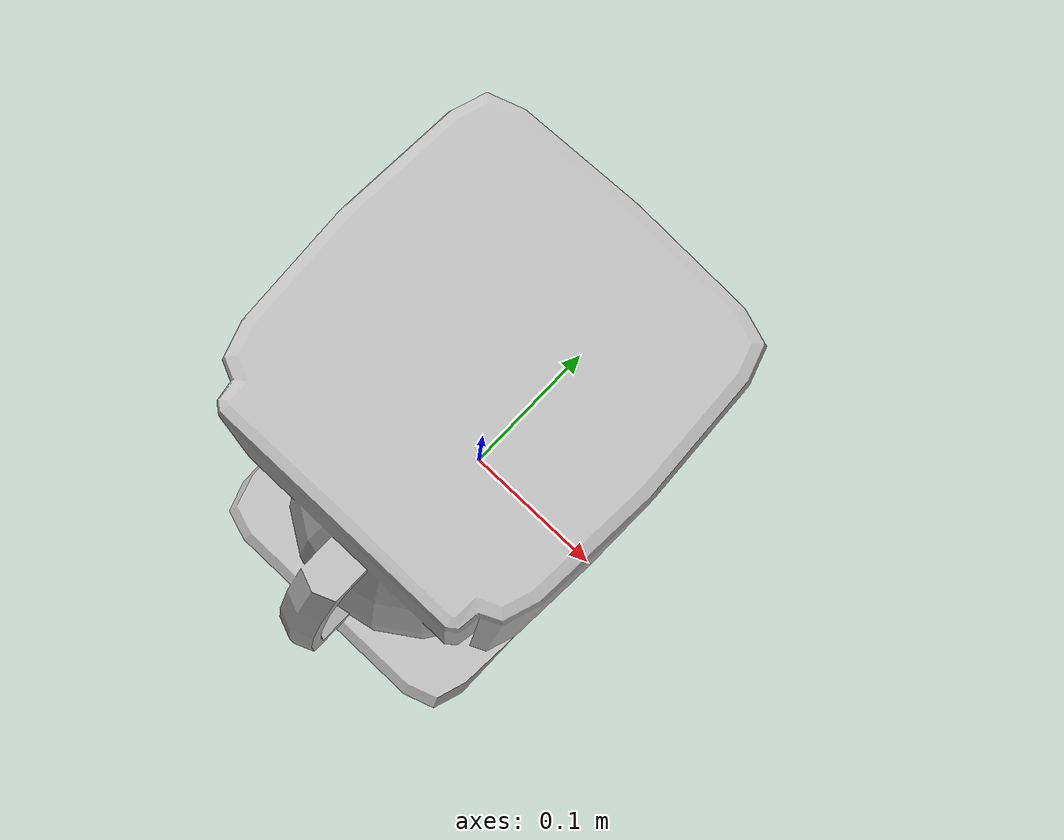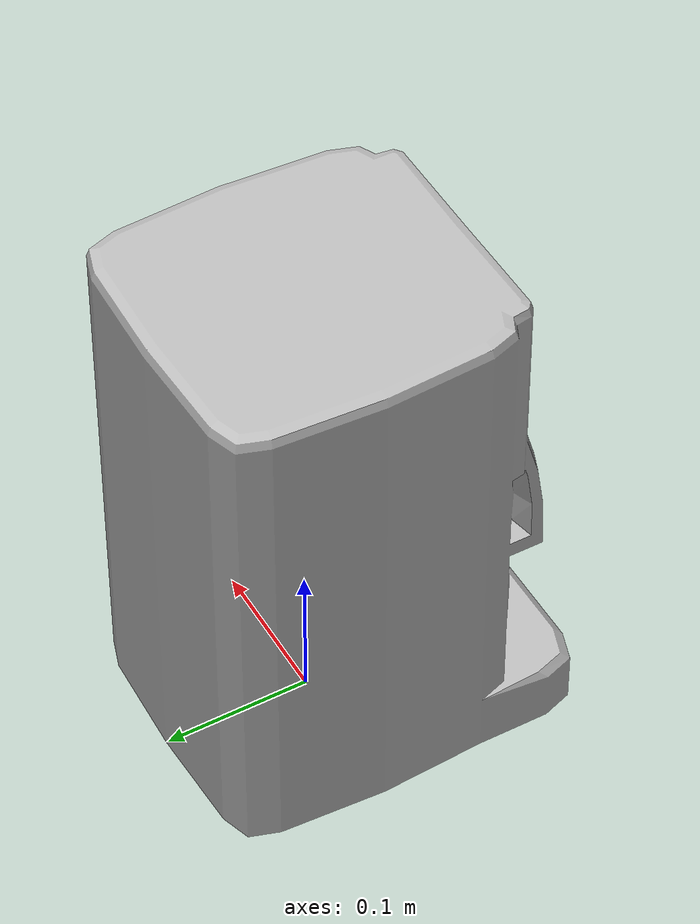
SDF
<sdf version="1.5">
  <model name="coffee_maker">
    <static>true</static>
    <link name="link">
      <visual name="visual">
        <geometry>
          <mesh>
            <uri>model://coffee_maker/meshes/coffee_maker.obj</uri>
            <scale>0.01 0.01 0.01</scale>
          </mesh>
        </geometry>
      </visual>
    </link>
  </model>
</sdf>
